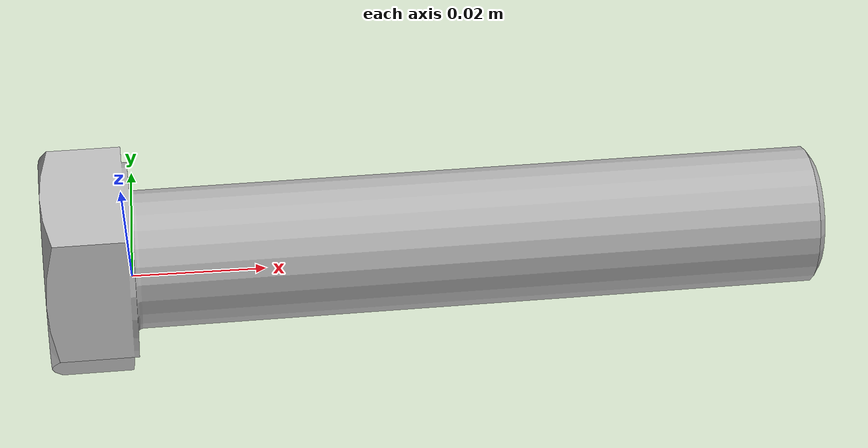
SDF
<?xml version="1.0" ?>
<sdf version="1.3">
  <model name="M20_100">
    <static>true</static>
    <link name="link">
      <pose>0 0 0 0 0 0</pose>
      <collision name="collision">
        <geometry>
          <mesh>
            <uri>model://M20_100/meshes/M20_100.dae</uri>
          </mesh>
        </geometry>
      </collision>
      <visual name="visual">
        <geometry>
          <mesh>
            <uri>model://M20_100/meshes/M20_100.dae</uri>
          </mesh>
        </geometry>
      </visual>
    </link>
  </model>
</sdf>
